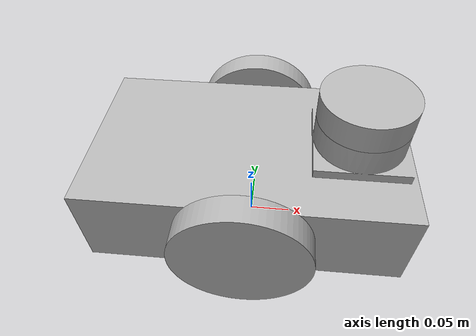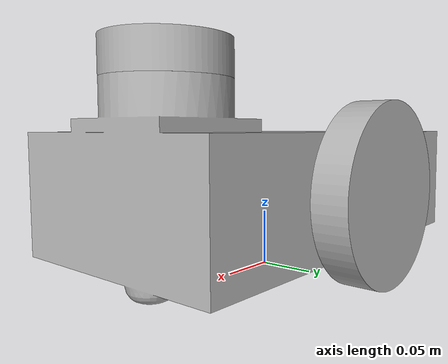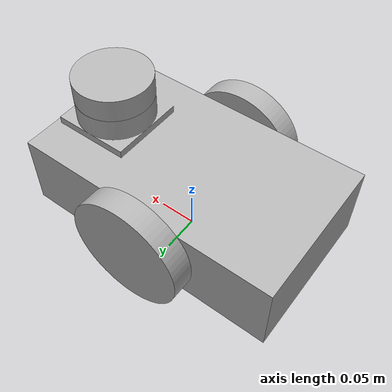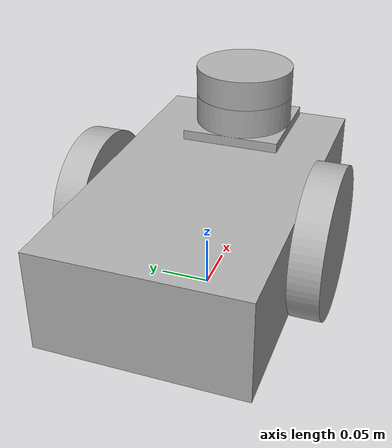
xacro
<?xml version="1.0" ?>
<robot name="basic1" xmlns:xacro="http://www.ros.org/wiki/xacro">

<xacro:include filename="$(find basic1_description)/urdf/materials.xacro" />
<xacro:include filename="$(find basic1_description)/urdf/basic1.trans" />
<xacro:include filename="$(find basic1_description)/urdf/basic1.gazebo" />
<link name="base_link">
  <inertial>
    <origin rpy="0 0 0" xyz="0.005323107562412837 -1.8454353384898353e-09 0.0775711990700668"/>
    <mass value="7.84920385446598"/>
    <inertia ixx="0.033129" ixy="-0.0" ixz="-0.002777" iyy="0.090165" iyz="-0.0" izz="0.107011"/>
  </inertial>
  <visual>
    <origin rpy="0 0 0" xyz="0 0 0"/>
    <geometry>
      <mesh filename="package://basic1_description/meshes/base_link.stl" scale="0.001 0.001 0.001"/>
    </geometry>
    <material name="silver"/>
  </visual>
  <collision>
    <origin rpy="0 0 0" xyz="0 0 0"/>
    <geometry>
      <mesh filename="package://basic1_description/meshes/base_link.stl" scale="0.001 0.001 0.001"/>
    </geometry>
  </collision>
</link>

<link name="right_wheel_1">
  <inertial>
    <origin rpy="0 0 0" xyz="8.577812000180783e-18 -0.015 0.0"/>
    <mass value="0.4930336970727482"/>
    <inertia ixx="0.00073" ixy="0.0" ixz="0.0" iyy="0.001387" iyz="-0.0" izz="0.00073"/>
  </inertial>
  <visual>
    <origin rpy="0 0 0" xyz="-0.0 0.1 -0.075"/>
    <geometry>
      <mesh filename="package://basic1_description/meshes/right_wheel_1.stl" scale="0.001 0.001 0.001"/>
    </geometry>
    <material name="silver"/>
  </visual>
  <collision>
    <origin rpy="0 0 0" xyz="-0.0 0.1 -0.075"/>
    <geometry>
      <mesh filename="package://basic1_description/meshes/right_wheel_1.stl" scale="0.001 0.001 0.001"/>
    </geometry>
  </collision>
</link>

<link name="left_wheel_1">
  <inertial>
    <origin rpy="0 0 0" xyz="8.577812000180783e-18 0.015 0.0"/>
    <mass value="0.4930336970727482"/>
    <inertia ixx="0.00073" ixy="-0.0" ixz="0.0" iyy="0.001387" iyz="0.0" izz="0.00073"/>
  </inertial>
  <visual>
    <origin rpy="0 0 0" xyz="-0.0 -0.1 -0.075"/>
    <geometry>
      <mesh filename="package://basic1_description/meshes/left_wheel_1.stl" scale="0.001 0.001 0.001"/>
    </geometry>
    <material name="silver"/>
  </visual>
  <collision>
    <origin rpy="0 0 0" xyz="-0.0 -0.1 -0.075"/>
    <geometry>
      <mesh filename="package://basic1_description/meshes/left_wheel_1.stl" scale="0.001 0.001 0.001"/>
    </geometry>
  </collision>
</link>

<link name="lidar_1">
  <inertial>
    <origin rpy="0 0 0" xyz="-3.9196026813126394e-07 2.895011550061015e-17 0.014999999999999986"/>
    <mass value="1.8496126748009902"/>
    <inertia ixx="0.001295" ixy="-0.0" ixz="0.0" iyy="0.001295" iyz="0.0" izz="0.002312"/>
  </inertial>
  <visual>
    <origin rpy="0 0 0" xyz="-0.117447 -0.0 -0.165"/>
    <geometry>
      <mesh filename="package://basic1_description/meshes/lidar_1.stl" scale="0.001 0.001 0.001"/>
    </geometry>
    <material name="silver"/>
  </visual>
  <collision>
    <origin rpy="0 0 0" xyz="-0.117447 -0.0 -0.165"/>
    <geometry>
      <mesh filename="package://basic1_description/meshes/lidar_1.stl" scale="0.001 0.001 0.001"/>
    </geometry>
  </collision>
</link>

<joint name="Rev1" type="continuous">
  <origin rpy="0 0 0" xyz="0.0 -0.1 0.075"/>
  <parent link="base_link"/>
  <child link="right_wheel_1"/>
  <axis xyz="0.0 1.0 0.0"/>
</joint>

<joint name="Rev2" type="continuous">
  <origin rpy="0 0 0" xyz="0.0 0.1 0.075"/>
  <parent link="base_link"/>
  <child link="left_wheel_1"/>
  <axis xyz="0.0 1.0 0.0"/>
</joint>

<joint name="Rigid3" type="fixed">
  <origin rpy="0 0 0" xyz="0.117447 0.0 0.165"/>
  <parent link="base_link"/>
  <child link="lidar_1"/>
</joint>

</robot>

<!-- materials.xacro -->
<robot name="basic1" xmlns:xacro="http://www.ros.org/wiki/xacro" >

<material name="silver">
  <color rgba="0.700 0.700 0.700 1.000"/>
</material>

</robot>

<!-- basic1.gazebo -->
<robot name="basic1" xmlns:xacro="http://www.ros.org/wiki/xacro" >

<xacro:property name="body_color" value="Gazebo/Silver" />

<gazebo>
  <plugin filename="libgazebo_ros_control.so" name="control"/>
</gazebo>
<gazebo reference="base_link">
  <material>${body_color}</material>
  <mu1>0.1</mu1>
  <mu2>0.1</mu2>
  <selfCollide>true</selfCollide>
  <gravity>true</gravity>
</gazebo>

<gazebo reference="right_wheel_1">
  <material>${body_color}</material>
  <mu1>1500</mu1>
  <mu2>1500</mu2>
  <selfCollide>true</selfCollide>
</gazebo>

<gazebo reference="left_wheel_1">
  <material>${body_color}</material>
  <mu1>1500</mu1>
  <mu2>1500</mu2>
  <selfCollide>true</selfCollide>
</gazebo>

<gazebo reference="lidar_1">
  <material>${body_color}</material>
  <mu1>0.2</mu1>
  <mu2>0.2</mu2>
  <selfCollide>true</selfCollide>
</gazebo>
<gazebo>
  <plugin name="differential_drive_controller" filename="libgazebo_ros_diff_drive.so">

    <!-- Plugin update rate in Hz -->
    <updateRate>$100</updateRate>

    <!-- Name of left joint, defaults to `left_joint` -->
    <leftJoint>Rev2</leftJoint>

    <!-- Name of right joint, defaults to `right_joint` -->
    <rightJoint>Rev1</rightJoint>

    <!-- The distance from the center of one wheel to the other, in meters, defaults to 0.34 m -->
    <wheelSeparation>0.5380</wheelSeparation>

    <!-- Diameter of the wheels, in meters, defaults to 0.15 m -->
    <wheelDiameter>0.2</wheelDiameter>

    <!-- Wheel acceleration, in rad/s^2, defaults to 0.0 rad/s^2 -->
    <wheelAcceleration>0.1</wheelAcceleration>

    <!-- Maximum torque which the wheels can produce, in Nm, defaults to 5 Nm -->
    <wheelTorque>50</wheelTorque>

    <!-- Topic to receive geometry_msgs/Twist message commands, defaults to `cmd_vel` -->
    <commandTopic>cmd_vel</commandTopic>

    <!-- Topic to publish nav_msgs/Odometry messages, defaults to `odom` -->
    <odometryTopic>odom</odometryTopic>

    <!-- Odometry frame, defaults to `odom` -->
    <odometryFrame>odom</odometryFrame>

    <!-- Robot frame to calculate odometry from, defaults to `base_footprint` -->
    <robotBaseFrame>base_link</robotBaseFrame>

    <!-- Odometry source, 0 for ENCODER, 1 for WORLD, defaults to WORLD -->
    <odometrySource>1</odometrySource>

    <!-- Set to true to publish transforms for the wheel links, defaults to false -->
    <publishWheelTF>true</publishWheelTF>

    <!-- Set to true to publish transforms for the odometry, defaults to true -->
    <publishOdom>true</publishOdom>

    <!-- Set to true to publish sensor_msgs/JointState on /joint_states for the wheel joints, defaults to false -->
    <publishWheelJointState>true</publishWheelJointState>

    <!-- Set to true to swap right and left wheels, defaults to true -->
    <legacyMode>false</legacyMode>
  </plugin>
</gazebo>
 <!-- hokuyo -->
  <gazebo reference="lidar_1">
    <sensor type="ray" name="head_hokuyo_sensor">
      <pose>0 0 0 0 0 0</pose>
      <visualize>true</visualize>
      <update_rate>40</update_rate>
      <ray>
        <scan>
          <horizontal>
            <samples>25</samples>
            <resolution>1</resolution>
            <min_angle>-1.570796</min_angle>
            <max_angle>1.570796</max_angle>
          </horizontal>
        </scan>
        <range>
          <min>0.10</min>
          <max>0.80</max>
          <resolution>0.01</resolution>
        </range>
        <noise>
          <type>gaussian</type>
          <mean>0.0</mean>
          <stddev>0.01</stddev>
        </noise>
      </ray>
      <plugin name="gazebo_ros_head_hokuyo_controller" filename="libgazebo_ros_laser.so">
        <topicName>/scan</topicName>
        <frameName>lidar_1</frameName>
      </plugin>
    </sensor>
  </gazebo>
</robot>
